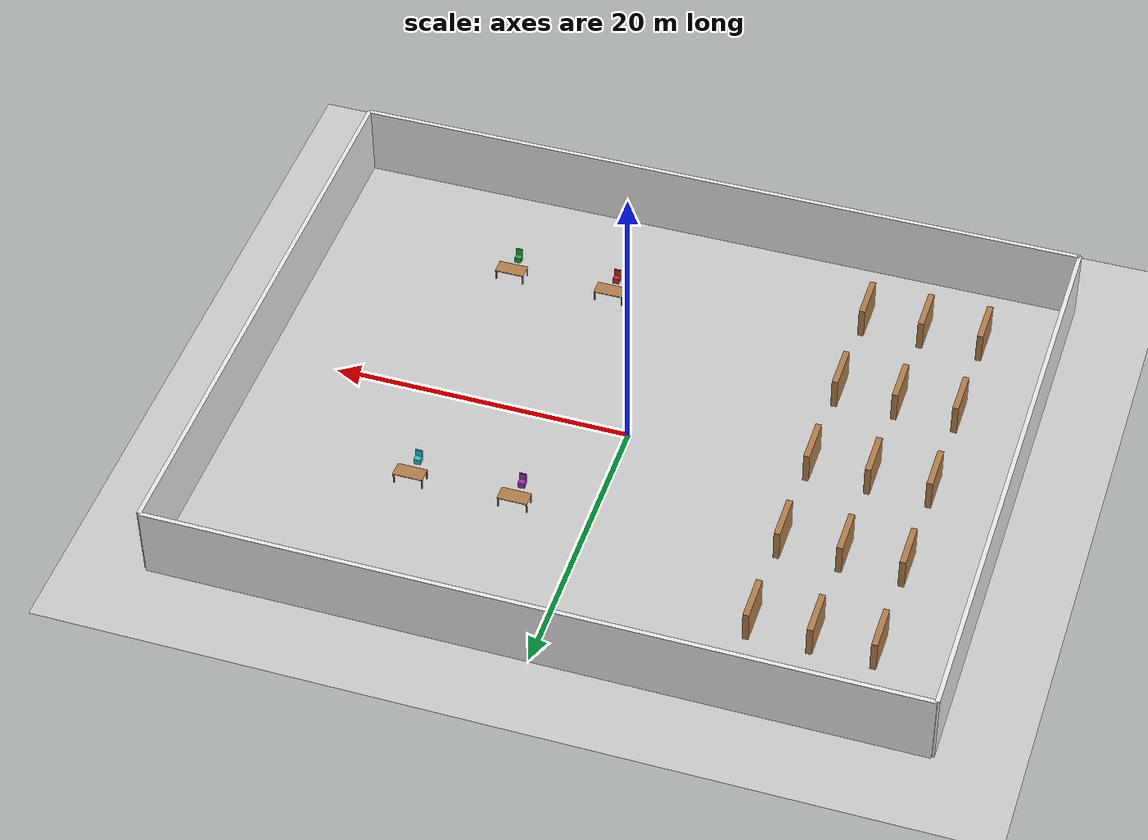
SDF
<sdf version='1.7'>
  <world name='library'>
    <light name='sun' type='directional'>
      <cast_shadows>1</cast_shadows>
      <pose>0 0 15 0 0 0</pose>
      <direction>-0.5 0.1 -0.9</direction>
      <diffuse>0.9 0.9 0.85 1</diffuse>
      <specular>0.3 0.3 0.3 1</specular>
    </light>

    <physics type='ode'>
      <max_step_size>0.004</max_step_size>
      <real_time_factor>1</real_time_factor>
      <real_time_update_rate>250</real_time_update_rate>
    </physics>

    <scene>
      <ambient>0.5 0.5 0.5 1</ambient>
      <background>0.7 0.7 0.7 1</background>
      <shadows>1</shadows>
      <fog type="linear">
        <start>0</start>
        <end>200</end>
        <density>0</density>
      </fog>
    </scene>

    <model name='ground_plane'>
      <static>1</static>
      <link name='ground_link'>
        <collision name='ground_collision'>
          <geometry>
            <plane>
              <normal>0 0 1</normal>
              <size>100 100</size>
            </plane>
          </geometry>
        </collision>
        <visual name='ground_visual'>
          <geometry>
            <plane>
              <normal>0 0 1</normal>
              <size>100 100</size>
            </plane>
          </geometry>
          <material>
            <script>
              <name>Gazebo/Gray</name>
            </script>
          </material>
        </visual>
      </link>
    </model>

    <model name='library_walls'>
      <static>1</static>
      <pose>0 0 0 0 0 0</pose>
      <link name='front_wall_link'>
        <collision name='front_wall_col'>
          <geometry><box><size>50 0.3 5</size></box></geometry>
        </collision>
        <visual name='front_wall_vis'>
          <geometry><box><size>50 0.3 5</size></box></geometry>
          <material><script><name>Gazebo/White</name></script></material>
        </visual>
        <pose>0 20 2.5 0 0 0</pose>
      </link>
      <link name='back_wall_link'>
        <collision name='back_wall_col'>
          <geometry><box><size>50 0.3 5</size></box></geometry>
        </collision>
        <visual name='back_wall_vis'>
          <geometry><box><size>50 0.3 5</size></box></geometry>
          <material><script><name>Gazebo/White</name></script></material>
        </visual>
        <pose>0 -20 2.5 0 0 0</pose>
      </link>
      <link name='left_wall_link'>
        <collision name='left_wall_col'>
          <geometry><box><size>0.3 40 5</size></box></geometry>
        </collision>
        <visual name='left_wall_vis'>
          <geometry><box><size>0.3 40 5</size></box></geometry>
          <material><script><name>Gazebo/White</name></script></material>
        </visual>
        <pose>-25 0 2.5 0 0 0</pose>
      </link>
      <link name='right_wall_link'>
        <collision name='right_wall_col'>
          <geometry><box><size>0.3 40 5</size></box></geometry>
        </collision>
        <visual name='right_wall_vis'>
          <geometry><box><size>0.3 40 5</size></box></geometry>
          <material><script><name>Gazebo/White</name></script></material>
        </visual>
        <pose>25 0 2.5 0 0 0</pose>
      </link>
    </model>

    <model name='bookshelf_1_1'>
      <static>1</static>
      <pose>-20 -15 1.1 0 0 0</pose>
      <link name='link'>
        <collision name='col'><geometry><box><size>0.4 3 2.2</size></box></geometry></collision>
        <visual name='vis'>
          <geometry><box><size>0.4 3 2.2</size></box></geometry>
          <material><script><name>Gazebo/Wood</name></script></material>
        </visual>
      </link>
    </model>
    <model name='bookshelf_1_2'>
      <static>1</static>
      <pose>-20 -8 1.1 0 0 0</pose>
      <link name='link'>
        <collision name='col'><geometry><box><size>0.4 3 2.2</size></box></geometry></collision>
        <visual name='vis'>
          <geometry><box><size>0.4 3 2.2</size></box></geometry>
          <material><script><name>Gazebo/Wood</name></script></material>
        </visual>
      </link>
    </model>
    <model name='bookshelf_1_3'>
      <static>1</static>
      <pose>-20 -1 1.1 0 0 0</pose>
      <link name='link'>
        <collision name='col'><geometry><box><size>0.4 3 2.2</size></box></geometry></collision>
        <visual name='vis'>
          <geometry><box><size>0.4 3 2.2</size></box></geometry>
          <material><script><name>Gazebo/Wood</name></script></material>
        </visual>
      </link>
    </model>
    <model name='bookshelf_1_4'>
      <static>1</static>
      <pose>-20 6 1.1 0 0 0</pose>
      <link name='link'>
        <collision name='col'><geometry><box><size>0.4 3 2.2</size></box></geometry></collision>
        <visual name='vis'>
          <geometry><box><size>0.4 3 2.2</size></box></geometry>
          <material><script><name>Gazebo/Wood</name></script></material>
        </visual>
      </link>
    </model>
    <model name='bookshelf_1_5'>
      <static>1</static>
      <pose>-20 13 1.1 0 0 0</pose>
      <link name='link'>
        <collision name='col'><geometry><box><size>0.4 3 2.2</size></box></geometry></collision>
        <visual name='vis'>
          <geometry><box><size>0.4 3 2.2</size></box></geometry>
          <material><script><name>Gazebo/Wood</name></script></material>
        </visual>
      </link>
    </model>

    <model name='bookshelf_2_1'>
      <static>1</static>
      <pose>-16 -15 1.1 0 0 0</pose>
      <link name='link'>
        <collision name='col'><geometry><box><size>0.4 3 2.2</size></box></geometry></collision>
        <visual name='vis'>
          <geometry><box><size>0.4 3 2.2</size></box></geometry>
          <material><script><name>Gazebo/Wood</name></script></material>
        </visual>
      </link>
    </model>
    <model name='bookshelf_2_2'>
      <static>1</static>
      <pose>-16 -8 1.1 0 0 0</pose>
      <link name='link'>
        <collision name='col'><geometry><box><size>0.4 3 2.2</size></box></geometry></collision>
        <visual name='vis'>
          <geometry><box><size>0.4 3 2.2</size></box></geometry>
          <material><script><name>Gazebo/Wood</name></script></material>
        </visual>
      </link>
    </model>
    <model name='bookshelf_2_3'>
      <static>1</static>
      <pose>-16 -1 1.1 0 0 0</pose>
      <link name='link'>
        <collision name='col'><geometry><box><size>0.4 3 2.2</size></box></geometry></collision>
        <visual name='vis'>
          <geometry><box><size>0.4 3 2.2</size></box></geometry>
          <material><script><name>Gazebo/Wood</name></script></material>
        </visual>
      </link>
    </model>
    <model name='bookshelf_2_4'>
      <static>1</static>
      <pose>-16 6 1.1 0 0 0</pose>
      <link name='link'>
        <collision name='col'><geometry><box><size>0.4 3 2.2</size></box></geometry></collision>
        <visual name='vis'>
          <geometry><box><size>0.4 3 2.2</size></box></geometry>
          <material><script><name>Gazebo/Wood</name></script></material>
        </visual>
      </link>
    </model>
    <model name='bookshelf_2_5'>
      <static>1</static>
      <pose>-16 13 1.1 0 0 0</pose>
      <link name='link'>
        <collision name='col'><geometry><box><size>0.4 3 2.2</size></box></geometry></collision>
        <visual name='vis'>
          <geometry><box><size>0.4 3 2.2</size></box></geometry>
          <material><script><name>Gazebo/Wood</name></script></material>
        </visual>
      </link>
    </model>

    <model name='bookshelf_3_1'>
      <static>1</static>
      <pose>-12 -15 1.1 0 0 0</pose>
      <link name='link'>
        <collision name='col'><geometry><box><size>0.4 3 2.2</size></box></geometry></collision>
        <visual name='vis'>
          <geometry><box><size>0.4 3 2.2</size></box></geometry>
          <material><script><name>Gazebo/Wood</name></script></material>
        </visual>
      </link>
    </model>
    <model name='bookshelf_3_2'>
      <static>1</static>
      <pose>-12 -8 1.1 0 0 0</pose>
      <link name='link'>
        <collision name='col'><geometry><box><size>0.4 3 2.2</size></box></geometry></collision>
        <visual name='vis'>
          <geometry><box><size>0.4 3 2.2</size></box></geometry>
          <material><script><name>Gazebo/Wood</name></script></material>
        </visual>
      </link>
    </model>
    <model name='bookshelf_3_3'>
      <static>1</static>
      <pose>-12 -1 1.1 0 0 0</pose>
      <link name='link'>
        <collision name='col'><geometry><box><size>0.4 3 2.2</size></box></geometry></collision>
        <visual name='vis'>
          <geometry><box><size>0.4 3 2.2</size></box></geometry>
          <material><script><name>Gazebo/Wood</name></script></material>
        </visual>
      </link>
    </model>
    <model name='bookshelf_3_4'>
      <static>1</static>
      <pose>-12 6 1.1 0 0 0</pose>
      <link name='link'>
        <collision name='col'><geometry><box><size>0.4 3 2.2</size></box></geometry></collision>
        <visual name='vis'>
          <geometry><box><size>0.4 3 2.2</size></box></geometry>
          <material><script><name>Gazebo/Wood</name></script></material>
        </visual>
      </link>
    </model>
    <model name='bookshelf_3_5'>
      <static>1</static>
      <pose>-12 13 1.1 0 0 0</pose>
      <link name='link'>
        <collision name='col'><geometry><box><size>0.4 3 2.2</size></box></geometry></collision>
        <visual name='vis'>
          <geometry><box><size>0.4 3 2.2</size></box></geometry>
          <material><script><name>Gazebo/Wood</name></script></material>
        </visual>
      </link>
    </model>

    <model name='table_1'>
      <static>1</static>
      <pose>5 -12 0 0 0 0</pose>
      <link name='link'>
        <collision name='table_top_col'>
          <geometry><box><size>2 1 0.05</size></box></geometry>
          <pose>0 0 0.75 0 0 0</pose>
        </collision>
        <visual name='table_top_vis'>
          <geometry><box><size>2 1 0.05</size></box></geometry>
          <pose>0 0 0.75 0 0 0</pose>
          <material><script><name>Gazebo/Wood</name></script></material>
        </visual>
        <collision name='leg1_col'><geometry><box><size>0.08 0.08 0.75</size></box></geometry><pose>-0.95 -0.45 0.375 0 0 0</pose></collision>
        <visual name='leg1_vis'><geometry><box><size>0.08 0.08 0.75</size></box></geometry><pose>-0.95 -0.45 0.375 0 0 0</pose><material><script><name>Gazebo/Wood</name></script></material></visual>
        <collision name='leg2_col'><geometry><box><size>0.08 0.08 0.75</size></box></geometry><pose>0.95 -0.45 0.375 0 0 0</pose></collision>
        <visual name='leg2_vis'><geometry><box><size>0.08 0.08 0.75</size></box></geometry><pose>0.95 -0.45 0.375 0 0 0</pose><material><script><name>Gazebo/Wood</name></script></material></visual>
        <collision name='leg3_col'><geometry><box><size>0.08 0.08 0.75</size></box></geometry><pose>-0.95 0.45 0.375 0 0 0</pose></collision>
        <visual name='leg3_vis'><geometry><box><size>0.08 0.08 0.75</size></box></geometry><pose>-0.95 0.45 0.375 0 0 0</pose><material><script><name>Gazebo/Wood</name></script></material></visual>
        <collision name='leg4_col'><geometry><box><size>0.08 0.08 0.75</size></box></geometry><pose>0.95 0.45 0.375 0 0 0</pose></collision>
        <visual name='leg4_vis'><geometry><box><size>0.08 0.08 0.75</size></box></geometry><pose>0.95 0.45 0.375 0 0 0</pose><material><script><name>Gazebo/Wood</name></script></material></visual>
      </link>
    </model>
    <model name='table_2'>
      <static>1</static>
      <pose>12 -12 0 0 0 0</pose>
      <link name='link'>
        <collision name='table_top_col'>
          <geometry><box><size>2 1 0.05</size></box></geometry>
          <pose>0 0 0.75 0 0 0</pose>
        </collision>
        <visual name='table_top_vis'>
          <geometry><box><size>2 1 0.05</size></box></geometry>
          <pose>0 0 0.75 0 0 0</pose>
          <material><script><name>Gazebo/Wood</name></script></material>
        </visual>
        <collision name='leg1_col'><geometry><box><size>0.08 0.08 0.75</size></box></geometry><pose>-0.95 -0.45 0.375 0 0 0</pose></collision>
        <visual name='leg1_vis'><geometry><box><size>0.08 0.08 0.75</size></box></geometry><pose>-0.95 -0.45 0.375 0 0 0</pose><material><script><name>Gazebo/Wood</name></script></material></visual>
        <collision name='leg2_col'><geometry><box><size>0.08 0.08 0.75</size></box></geometry><pose>0.95 -0.45 0.375 0 0 0</pose></collision>
        <visual name='leg2_vis'><geometry><box><size>0.08 0.08 0.75</size></box></geometry><pose>0.95 -0.45 0.375 0 0 0</pose><material><script><name>Gazebo/Wood</name></script></material></visual>
        <collision name='leg3_col'><geometry><box><size>0.08 0.08 0.75</size></box></geometry><pose>-0.95 0.45 0.375 0 0 0</pose></collision>
        <visual name='leg3_vis'><geometry><box><size>0.08 0.08 0.75</size></box></geometry><pose>-0.95 0.45 0.375 0 0 0</pose><material><script><name>Gazebo/Wood</name></script></material></visual>
        <collision name='leg4_col'><geometry><box><size>0.08 0.08 0.75</size></box></geometry><pose>0.95 0.45 0.375 0 0 0</pose></collision>
        <visual name='leg4_vis'><geometry><box><size>0.08 0.08 0.75</size></box></geometry><pose>0.95 0.45 0.375 0 0 0</pose><material><script><name>Gazebo/Wood</name></script></material></visual>
      </link>
    </model>
    <model name='table_3'>
      <static>1</static>
      <pose>5 8 0 0 0 0</pose>
      <link name='link'>
        <collision name='table_top_col'>
          <geometry><box><size>2 1 0.05</size></box></geometry>
          <pose>0 0 0.75 0 0 0</pose>
        </collision>
        <visual name='table_top_vis'>
          <geometry><box><size>2 1 0.05</size></box></geometry>
          <pose>0 0 0.75 0 0 0</pose>
          <material><script><name>Gazebo/Wood</name></script></material>
        </visual>
        <collision name='leg1_col'><geometry><box><size>0.08 0.08 0.75</size></box></geometry><pose>-0.95 -0.45 0.375 0 0 0</pose></collision>
        <visual name='leg1_vis'><geometry><box><size>0.08 0.08 0.75</size></box></geometry><pose>-0.95 -0.45 0.375 0 0 0</pose><material><script><name>Gazebo/Wood</name></script></material></visual>
        <collision name='leg2_col'><geometry><box><size>0.08 0.08 0.75</size></box></geometry><pose>0.95 -0.45 0.375 0 0 0</pose></collision>
        <visual name='leg2_vis'><geometry><box><size>0.08 0.08 0.75</size></box></geometry><pose>0.95 -0.45 0.375 0 0 0</pose><material><script><name>Gazebo/Wood</name></script></material></visual>
        <collision name='leg3_col'><geometry><box><size>0.08 0.08 0.75</size></box></geometry><pose>-0.95 0.45 0.375 0 0 0</pose></collision>
        <visual name='leg3_vis'><geometry><box><size>0.08 0.08 0.75</size></box></geometry><pose>-0.95 0.45 0.375 0 0 0</pose><material><script><name>Gazebo/Wood</name></script></material></visual>
        <collision name='leg4_col'><geometry><box><size>0.08 0.08 0.75</size></box></geometry><pose>0.95 0.45 0.375 0 0 0</pose></collision>
        <visual name='leg4_vis'><geometry><box><size>0.08 0.08 0.75</size></box></geometry><pose>0.95 0.45 0.375 0 0 0</pose><material><script><name>Gazebo/Wood</name></script></material></visual>
      </link>
    </model>
    <model name='table_4'>
      <static>1</static>
      <pose>12 8 0 0 0 0</pose>
      <link name='link'>
        <collision name='table_top_col'>
          <geometry><box><size>2 1 0.05</size></box></geometry>
          <pose>0 0 0.75 0 0 0</pose>
        </collision>
        <visual name='table_top_vis'>
          <geometry><box><size>2 1 0.05</size></box></geometry>
          <pose>0 0 0.75 0 0 0</pose>
          <material><script><name>Gazebo/Wood</name></script></material>
        </visual>
        <collision name='leg1_col'><geometry><box><size>0.08 0.08 0.75</size></box></geometry><pose>-0.95 -0.45 0.375 0 0 0</pose></collision>
        <visual name='leg1_vis'><geometry><box><size>0.08 0.08 0.75</size></box></geometry><pose>-0.95 -0.45 0.375 0 0 0</pose><material><script><name>Gazebo/Wood</name></script></material></visual>
        <collision name='leg2_col'><geometry><box><size>0.08 0.08 0.75</size></box></geometry><pose>0.95 -0.45 0.375 0 0 0</pose></collision>
        <visual name='leg2_vis'><geometry><box><size>0.08 0.08 0.75</size></box></geometry><pose>0.95 -0.45 0.375 0 0 0</pose><material><script><name>Gazebo/Wood</name></script></material></visual>
        <collision name='leg3_col'><geometry><box><size>0.08 0.08 0.75</size></box></geometry><pose>-0.95 0.45 0.375 0 0 0</pose></collision>
        <visual name='leg3_vis'><geometry><box><size>0.08 0.08 0.75</size></box></geometry><pose>-0.95 0.45 0.375 0 0 0</pose><material><script><name>Gazebo/Wood</name></script></material></visual>
        <collision name='leg4_col'><geometry><box><size>0.08 0.08 0.75</size></box></geometry><pose>0.95 0.45 0.375 0 0 0</pose></collision>
        <visual name='leg4_vis'><geometry><box><size>0.08 0.08 0.75</size></box></geometry><pose>0.95 0.45 0.375 0 0 0</pose><material><script><name>Gazebo/Wood</name></script></material></visual>
      </link>
    </model>

    <model name='chair_red_1'>
      <static>1</static>
      <pose>5 -13.5 0 0 0 0</pose>
      <link name='link'>
        <collision name='col'><geometry><box><size>0.45 0.45 0.4</size></box></geometry><pose>0 0 0.4 0 0 0</pose></collision>
        <visual name='vis'><geometry><box><size>0.45 0.45 0.4</size></box></geometry><pose>0 0 0.4 0 0 0</pose><material><script><name>Gazebo/Red</name></script></material></visual>
        <collision name='back_col'><geometry><box><size>0.45 0.08 0.6</size></box></geometry><pose>0 -0.2 0.8 0 0 0</pose></collision>
        <visual name='back_vis'><geometry><box><size>0.45 0.08 0.6</size></box></geometry><pose>0 -0.2 0.8 0 0 0</pose><material><script><name>Gazebo/Red</name></script></material></visual>
      </link>
    </model>
    <model name='chair_blue_1'>
      <static>1</static>
      <pose>5 -10.5 0 0 3.14 0</pose>
      <link name='link'>
        <collision name='col'><geometry><box><size>0.45 0.45 0.4</size></box></geometry><pose>0 0 0.4 0 0 0</pose></collision>
        <visual name='vis'><geometry><box><size>0.45 0.45 0.4</size></box></geometry><pose>0 0 0.4 0 0 0</pose><material><script><name>Gazebo/Blue</name></script></material></visual>
        <collision name='back_col'><geometry><box><size>0.45 0.08 0.6</size></box></geometry><pose>0 -0.2 0.8 0 0 0</pose></collision>
        <visual name='back_vis'><geometry><box><size>0.45 0.08 0.6</size></box></geometry><pose>0 -0.2 0.8 0 0 0</pose><material><script><name>Gazebo/Blue</name></script></material></visual>
      </link>
    </model>
    <model name='chair_green_1'>
      <static>1</static>
      <pose>12 -13.5 0 0 0 0</pose>
      <link name='link'>
        <collision name='col'><geometry><box><size>0.45 0.45 0.4</size></box></geometry><pose>0 0 0.4 0 0 0</pose></collision>
        <visual name='vis'><geometry><box><size>0.45 0.45 0.4</size></box></geometry><pose>0 0 0.4 0 0 0</pose><material><script><name>Gazebo/Green</name></script></material></visual>
        <collision name='back_col'><geometry><box><size>0.45 0.08 0.6</size></box></geometry><pose>0 -0.2 0.8 0 0 0</pose></collision>
        <visual name='back_vis'><geometry><box><size>0.45 0.08 0.6</size></box></geometry><pose>0 -0.2 0.8 0 0 0</pose><material><script><name>Gazebo/Green</name></script></material></visual>
      </link>
    </model>
    <model name='chair_yellow_1'>
      <static>1</static>
      <pose>12 -10.5 0 0 3.14 0</pose>
      <link name='link'>
        <collision name='col'><geometry><box><size>0.45 0.45 0.4</size></box></geometry><pose>0 0 0.4 0 0 0</pose></collision>
        <visual name='vis'><geometry><box><size>0.45 0.45 0.4</size></box></geometry><pose>0 0 0.4 0 0 0</pose><material><script><name>Gazebo/Yellow</name></script></material></visual>
        <collision name='back_col'><geometry><box><size>0.45 0.08 0.6</size></box></geometry><pose>0 -0.2 0.8 0 0 0</pose></collision>
        <visual name='back_vis'><geometry><box><size>0.45 0.08 0.6</size></box></geometry><pose>0 -0.2 0.8 0 0 0</pose><material><script><name>Gazebo/Yellow</name></script></material></visual>
      </link>
    </model>
    <model name='chair_purple_1'>
      <static>1</static>
      <pose>5 6.5 0 0 0 0</pose>
      <link name='link'>
        <collision name='col'><geometry><box><size>0.45 0.45 0.4</size></box></geometry><pose>0 0 0.4 0 0 0</pose></collision>
        <visual name='vis'><geometry><box><size>0.45 0.45 0.4</size></box></geometry><pose>0 0 0.4 0 0 0</pose><material><script><name>Gazebo/Purple</name></script></material></visual>
        <collision name='back_col'><geometry><box><size>0.45 0.08 0.6</size></box></geometry><pose>0 -0.2 0.8 0 0 0</pose></collision>
        <visual name='back_vis'><geometry><box><size>0.45 0.08 0.6</size></box></geometry><pose>0 -0.2 0.8 0 0 0</pose><material><script><name>Gazebo/Purple</name></script></material></visual>
      </link>
    </model>
    <model name='chair_orange_1'>
      <static>1</static>
      <pose>5 9.5 0 0 3.14 0</pose>
      <link name='link'>
        <collision name='col'><geometry><box><size>0.45 0.45 0.4</size></box></geometry><pose>0 0 0.4 0 0 0</pose></collision>
        <visual name='vis'><geometry><box><size>0.45 0.45 0.4</size></box></geometry><pose>0 0 0.4 0 0 0</pose><material><script><name>Gazebo/Orange</name></script></material></visual>
        <collision name='back_col'><geometry><box><size>0.45 0.08 0.6</size></box></geometry><pose>0 -0.2 0.8 0 0 0</pose></collision>
        <visual name='back_vis'><geometry><box><size>0.45 0.08 0.6</size></box></geometry><pose>0 -0.2 0.8 0 0 0</pose><material><script><name>Gazebo/Orange</name></script></material></visual>
      </link>
    </model>
    <model name='chair_cyan_1'>
      <static>1</static>
      <pose>12 6.5 0 0 0 0</pose>
      <link name='link'>
        <collision name='col'><geometry><box><size>0.45 0.45 0.4</size></box></geometry><pose>0 0 0.4 0 0 0</pose></collision>
        <visual name='vis'><geometry><box><size>0.45 0.45 0.4</size></box></geometry><pose>0 0 0.4 0 0 0</pose><material><script><name>Gazebo/Cyan</name></script></material></visual>
        <collision name='back_col'><geometry><box><size>0.45 0.08 0.6</size></box></geometry><pose>0 -0.2 0.8 0 0 0</pose></collision>
        <visual name='back_vis'><geometry><box><size>0.45 0.08 0.6</size></box></geometry><pose>0 -0.2 0.8 0 0 0</pose><material><script><name>Gazebo/Cyan</name></script></material></visual>
      </link>
    </model>
    <model name='chair_pink_1'>
      <static>1</static>
      <pose>12 9.5 0 0 3.14 0</pose>
      <link name='link'>
        <collision name='col'><geometry><box><size>0.45 0.45 0.4</size></box></geometry><pose>0 0 0.4 0 0 0</pose></collision>
        <visual name='vis'><geometry><box><size>0.45 0.45 0.4</size></box></geometry><pose>0 0 0.4 0 0 0</pose><material><script><name>Gazebo/Pink</name></script></material></visual>
        <collision name='back_col'><geometry><box><size>0.45 0.08 0.6</size></box></geometry><pose>0 -0.2 0.8 0 0 0</pose></collision>
        <visual name='back_vis'><geometry><box><size>0.45 0.08 0.6</size></box></geometry><pose>0 -0.2 0.8 0 0 0</pose><material><script><name>Gazebo/Pink</name></script></material></visual>
      </link>
    </model>
  </world>
</sdf>
